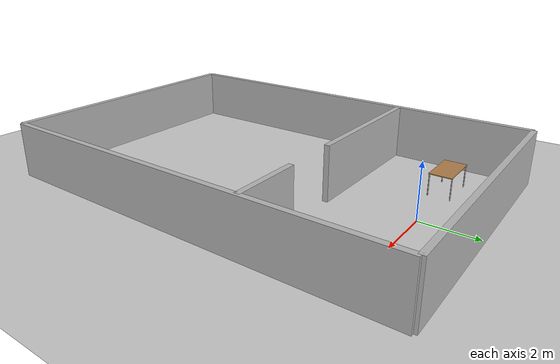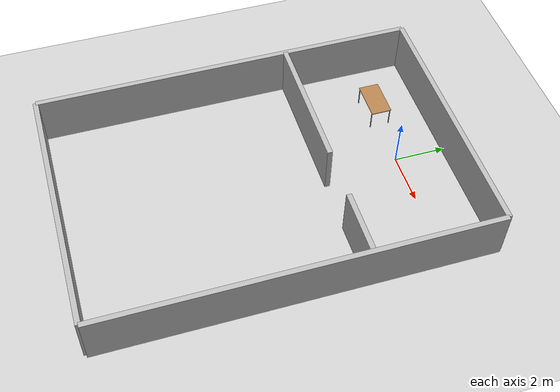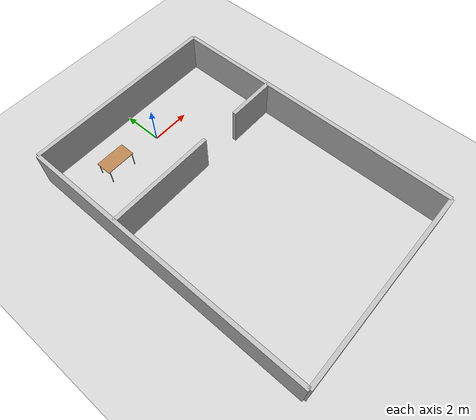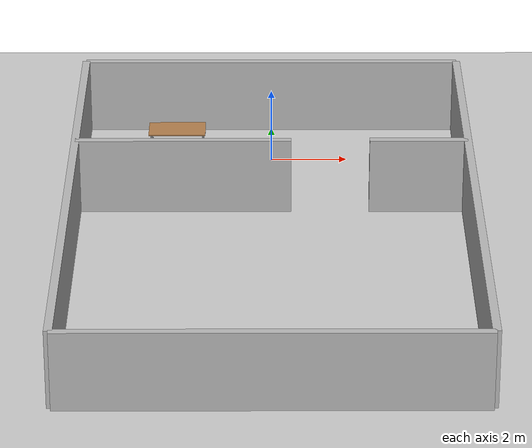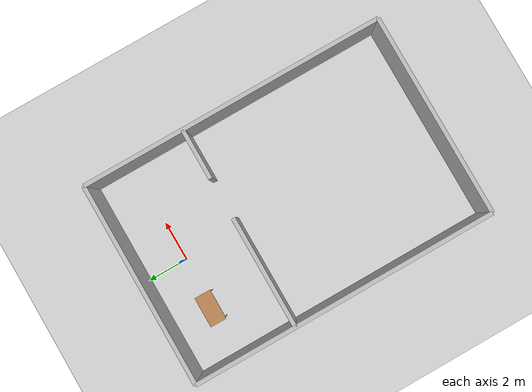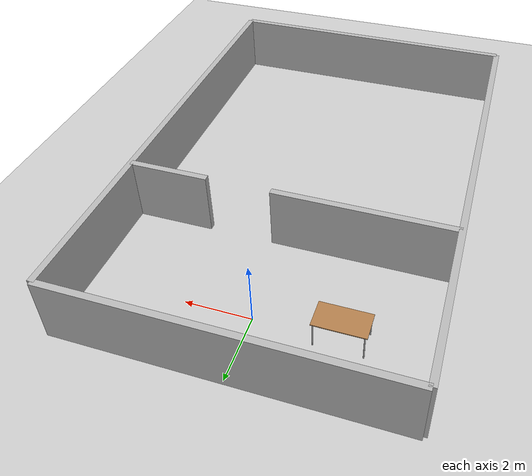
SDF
<sdf version="1.4">
 <world name="default">
  <physics type="ode">
   <gravity>0.000000 0.000000 -9.810000</gravity>
   <ode>
    <solver><type>quick</type><iters>20</iters><sor>1.000000</sor></solver>
    <constraints>
     <cfm>0.000000</cfm>
     <erp>0.200000</erp>
     <contact_max_correcting_vel>100.000000</contact_max_correcting_vel>
     <contact_surface_layer>0.000000</contact_surface_layer>
    </constraints>
   </ode>
   <real_time_update_rate>1000.000000</real_time_update_rate>
   <max_step_size>0.001000</max_step_size>
   <real_time_factor>1.000000</real_time_factor>
   <max_contacts>20</max_contacts>
  </physics>
  <light name="sun" type="directional">
   <pose>0.000000 0.000000 10.000000 0.000000 0.000000 0.000000</pose>
   <diffuse>0.800000 0.800000 0.800000 1.000000</diffuse>
   <specular>0.200000 0.200000 0.200000 1.000000</specular>
   <attenuation>
    <range>1000.000000</range>
    <constant>0.900000</constant>
    <linear>0.010000</linear>
    <quadratic>0.001000</quadratic>
   </attenuation>
   <direction>0.500000 0.100000 -0.900000</direction>
  </light>
  <model name="ground_plane">
   <static>1</static>
   <link name="link">
    <collision name="collision">
     <geometry>
      <plane><normal>0.000000 0.000000 1.000000</normal><size>100.000000 100.000000</size></plane>
     </geometry>
     <surface><friction><ode><mu>100.000000</mu><mu2>50.000000</mu2></ode></friction></surface>
    </collision>
    <visual name="visual">
     <cast_shadows>0</cast_shadows>
     <geometry>
      <plane><normal>0.000000 0.000000 1.000000</normal><size>100.000000 100.000000</size></plane>
     </geometry>
     <material>
      <script><uri>file://media/materials/scripts/gazebo.material</uri><name>Gazebo/Grey</name></script>
     </material>
    </visual>
    <velocity_decay><linear>0.000000</linear><angular>0.000000</angular></velocity_decay>
   </link>
  </model>
  <model name="wall_1_model">
   <pose>0.0 -13.0 1.0 0.0 0.0 0.0</pose>
   <static>1</static>
   <link name="wall_1_body">
    <inertial>
     <mass>1.000000</mass>
     <inertia>
      <ixx>1.000000</ixx>
      <ixy>0.000000</ixy>
      <ixz>0.000000</ixz>
      <iyy>1.000000</iyy>
      <iyz>0.000000</iyz>
      <izz>1.000000</izz>
     </inertia>
    </inertial>
    <collision name="collision">
     <geometry><box><size>10.000000 0.200000 2.000000</size></box></geometry>
    </collision>
    <visual name="visual"><geometry><box><size>10.000000 0.200000 2.000000</size></box></geometry></visual>
    <velocity_decay><linear>0.000000</linear><angular>0.000000</angular></velocity_decay>
   </link>
  </model>
  <model name="wall_2_model">
   <pose>0.0 2.0 1.0 0.0 0.0 0.0</pose>
   <static>1</static>
   <link name="wall_2_body">
    <inertial>
     <mass>1.000000</mass>
     <inertia>
      <ixx>1.000000</ixx>
      <ixy>0.000000</ixy>
      <ixz>0.000000</ixz>
      <iyy>1.000000</iyy>
      <iyz>0.000000</iyz>
      <izz>1.000000</izz>
     </inertia>
    </inertial>
    <collision name="collision">
     <geometry><box><size>10.000000 0.200000 2.000000</size></box></geometry>
    </collision>
    <visual name="visual"><geometry><box><size>10.000000 0.200000 2.000000</size></box></geometry></visual>
    <velocity_decay><linear>0.000000</linear><angular>0.000000</angular></velocity_decay>
   </link>
  </model>
  <model name="wall_3_model">
   <pose>-5.0 -5.5 1.0 0.0 0.0 0.0</pose>
   <static>1</static>
   <link name="wall_3_body">
    <inertial>
     <mass>1.000000</mass>
     <inertia>
      <ixx>1.000000</ixx>
      <ixy>0.000000</ixy>
      <ixz>0.000000</ixz>
      <iyy>1.000000</iyy>
      <iyz>0.000000</iyz>
      <izz>1.000000</izz>
     </inertia>
    </inertial>
    <collision name="collision">
     <geometry><box><size>0.200000 15.000000 2.000000</size></box></geometry>
    </collision>
    <visual name="visual"><geometry><box><size>0.200000 15.000000 2.000000</size></box></geometry></visual>
    <velocity_decay><linear>0.000000</linear><angular>0.000000</angular></velocity_decay>
   </link>
  </model>
  <model name="wall_4_model">
   <pose>5.0 -5.5 1.0 0.0 0.0 0.0</pose>
   <static>1</static>
   <link name="wall_4_body">
    <inertial>
     <mass>1.000000</mass>
     <inertia>
      <ixx>1.000000</ixx>
      <ixy>0.000000</ixy>
      <ixz>0.000000</ixz>
      <iyy>1.000000</iyy>
      <iyz>0.000000</iyz>
      <izz>1.000000</izz>
     </inertia>
    </inertial>
    <collision name="collision">
     <geometry><box><size>0.200000 15.000000 2.000000</size></box></geometry>
    </collision>
    <visual name="visual"><geometry><box><size>0.200000 15.000000 2.000000</size></box></geometry></visual>
    <velocity_decay><linear>0.000000</linear><angular>0.000000</angular></velocity_decay>
   </link>
  </model>
  <model name="wall_5_model">
   <pose>-2.25 -3.0 1.0 0.0 0.0 0.0</pose>
   <static>1</static>
   <link name="wall_5_body">
    <inertial>
     <mass>1.000000</mass>
     <inertia>
      <ixx>1.000000</ixx>
      <ixy>0.000000</ixy>
      <ixz>0.000000</ixz>
      <iyy>1.000000</iyy>
      <iyz>0.000000</iyz>
      <izz>1.000000</izz>
     </inertia>
    </inertial>
    <collision name="collision">
     <geometry><box><size>5.500000 0.200000 2.000000</size></box></geometry>
    </collision>
    <visual name="visual"><geometry><box><size>5.500000 0.200000 2.000000</size></box></geometry></visual>
    <velocity_decay><linear>0.000000</linear><angular>0.000000</angular></velocity_decay>
   </link>
  </model>
  <model name="wall_6_model">
   <pose>3.75 -3.0 1.0 0.0 0.0 0.0</pose>
   <static>1</static>
   <link name="wall_6_body">
    <inertial>
     <mass>1.000000</mass>
     <inertia>
      <ixx>1.000000</ixx>
      <ixy>0.000000</ixy>
      <ixz>0.000000</ixz>
      <iyy>1.000000</iyy>
      <iyz>0.000000</iyz>
      <izz>1.000000</izz>
     </inertia>
    </inertial>
    <collision name="collision">
     <geometry><box><size>2.500000 0.200000 2.000000</size></box></geometry>
    </collision>
    <visual name="visual"><geometry><box><size>2.500000 0.200000 2.000000</size></box></geometry></visual>
    <velocity_decay><linear>0.000000</linear><angular>0.000000</angular></velocity_decay>
   </link>
  </model>
  <scene>
   <ambient>0.200000 0.200000 0.200000 1.000000</ambient>
   <background>0.700000 0.700000 0.700000 1.000000</background>
   <shadows>1</shadows>
  </scene>
  <model name="table">
   <static>1</static>
   <link name="link">
    <collision name="surface">
     <pose>0.000000 0.000000 0.900000 0.000000 0.000000 0.000000</pose>
     <geometry><box><size>1.500000 0.800000 0.030000</size></box></geometry>
    </collision>
    <visual name="visual1">
     <pose>0.000000 0.000000 0.900000 0.000000 0.000000 0.000000</pose>
     <geometry><box><size>1.500000 0.800000 0.030000</size></box></geometry>
     <material>
      <script><uri>file://media/materials/scripts/gazebo.material</uri><name>Gazebo/Wood</name></script>
     </material>
    </visual>
    <collision name="front_left_leg">
     <pose>0.680000 0.380000 0.500000 0.000000 0.000000 0.000000</pose>
     <geometry><cylinder><radius>0.020000</radius><length>0.800000</length></cylinder></geometry>
    </collision>
    <visual name="front_left_leg">
     <pose>0.680000 0.380000 0.500000 0.000000 0.000000 0.000000</pose>
     <geometry><cylinder><radius>0.020000</radius><length>0.800000</length></cylinder></geometry>
     <material>
      <script><uri>file://media/materials/scripts/gazebo.material</uri><name>Gazebo/Grey</name></script>
     </material>
    </visual>
    <collision name="front_right_leg">
     <pose>0.680000 -0.380000 0.500000 0.000000 0.000000 0.000000</pose>
     <geometry><cylinder><radius>0.020000</radius><length>0.800000</length></cylinder></geometry>
    </collision>
    <visual name="front_right_leg">
     <pose>0.680000 -0.380000 0.500000 0.000000 0.000000 0.000000</pose>
     <geometry><cylinder><radius>0.020000</radius><length>0.800000</length></cylinder></geometry>
     <material>
      <script><uri>file://media/materials/scripts/gazebo.material</uri><name>Gazebo/Grey</name></script>
     </material>
    </visual>
    <collision name="back_right_leg">
     <pose>-0.680000 -0.380000 0.500000 0.000000 0.000000 0.000000</pose>
     <geometry><cylinder><radius>0.020000</radius><length>0.800000</length></cylinder></geometry>
    </collision>
    <visual name="back_right_leg">
     <pose>-0.680000 -0.380000 0.500000 0.000000 0.000000 0.000000</pose>
     <geometry><cylinder><radius>0.020000</radius><length>0.800000</length></cylinder></geometry>
     <material>
      <script><uri>file://media/materials/scripts/gazebo.material</uri><name>Gazebo/Grey</name></script>
     </material>
    </visual>
    <collision name="back_left_leg">
     <pose>-0.680000 0.380000 0.500000 0.000000 0.000000 0.000000</pose>
     <geometry><cylinder><radius>0.020000</radius><length>0.800000</length></cylinder></geometry>
    </collision>
    <visual name="back_left_leg">
     <pose>-0.680000 0.380000 0.500000 0.000000 0.000000 0.000000</pose>
     <geometry><cylinder><radius>0.020000</radius><length>0.800000</length></cylinder></geometry>
     <material>
      <script><uri>file://media/materials/scripts/gazebo.material</uri><name>Gazebo/Grey</name></script>
     </material>
    </visual>
    <velocity_decay><linear>0.000000</linear><angular>0.000000</angular></velocity_decay>
   </link>
   <pose>-2.5 0 0 0 0 0</pose>
  </model>
 </world>
</sdf>
